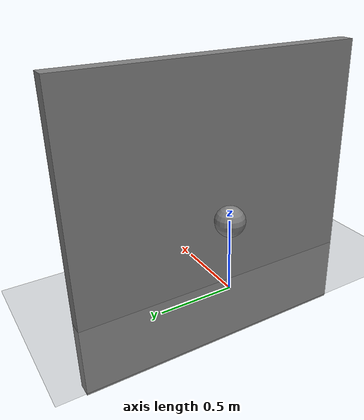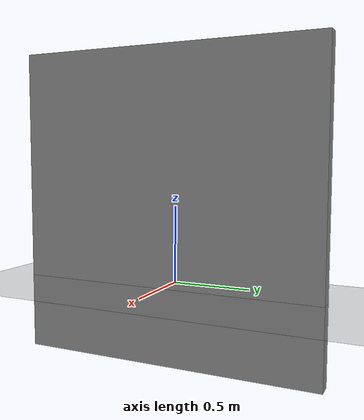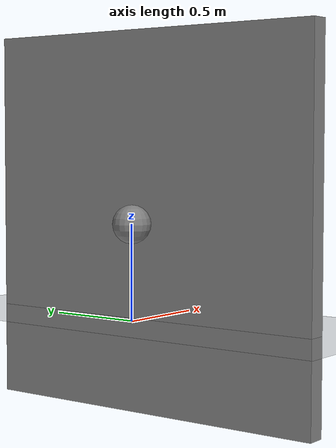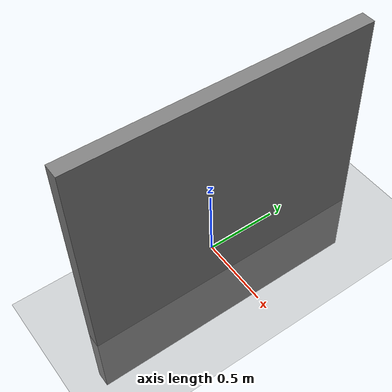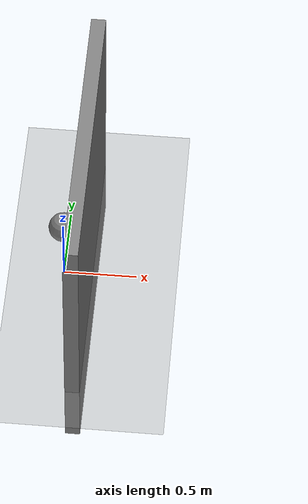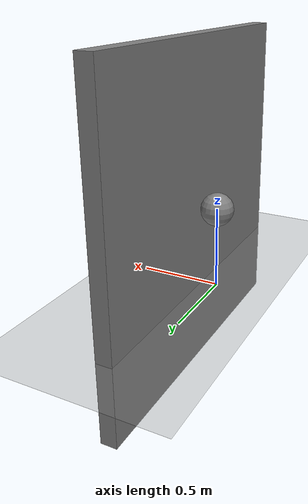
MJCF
<mujoco model="mocap_contact">
        <option gravity="0 0 -9.81" timestep="0.002"/>
        <worldbody>
            <geom type="plane" size="5 5 0.1"/>
            <body name="wall" mocap="true" pos="0.15 0 0.5">
                <geom type="box" size="0.05 1 1" mass="10.0"/>
            </body>
            <body name="ball" pos="0 0 0.5">
                <joint name="slide_x" type="slide" axis="1 0 0"/>
                <joint name="slide_z" type="slide" axis="0 0 1"/>
                <geom type="sphere" size="0.1" mass="1.0"/>
            </body>
        </worldbody>
    </mujoco>
